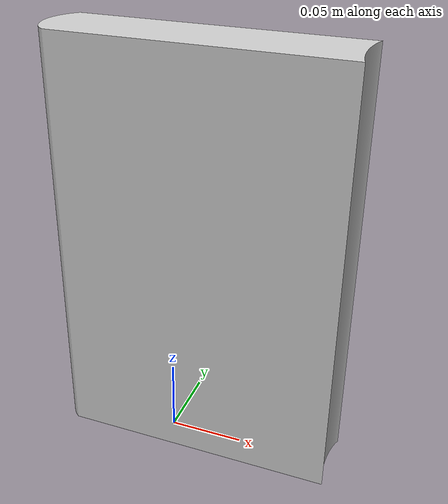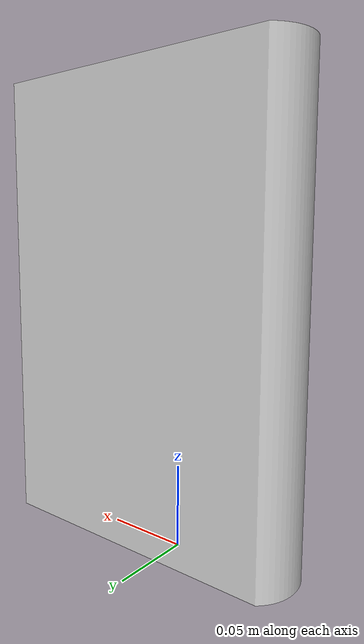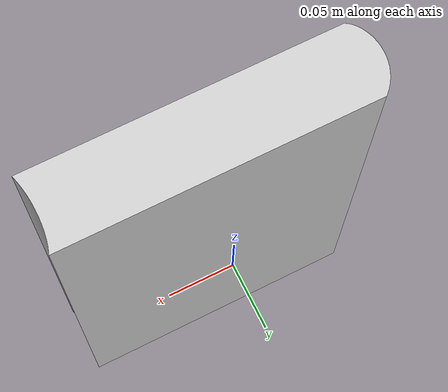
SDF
<?xml version='1.0'?>
<sdf version='1.6'>
  <model name='book1_2'>
    <link name='body'>
      <pose frame=''>0 0 0 0 -0 0</pose>
      <self_collide>0</self_collide>
      <kinematic>0</kinematic>
      <visual name='visual'>
        <geometry>
          <mesh>
            <uri>file://book1/model.dae</uri>
          </mesh>
        </geometry>
        <pose frame=''>0 0 0 0 -0 0</pose>
        <cast_shadows>1</cast_shadows>
        <transparency>0</transparency>
      </visual>
    </link>
    <link name='link_0'>
      <pose frame=''>0 0 0 0 -0 0</pose>
      <inertial>
        <mass>1</mass>
        <inertia>
          <ixx>0.166667</ixx>
          <ixy>0</ixy>
          <ixz>0</ixz>
          <iyy>0.166667</iyy>
          <iyz>0</iyz>
          <izz>0.166667</izz>
        </inertia>
      </inertial>
      <visual name='visual'>
        <pose frame=''>0 0 0 0 -0 0</pose>
        <geometry>
          <mesh>
            <uri>/home/lruegeme/projects/tobi_world/tobi_world/tobi_world_misc/gazebo/models/book1/model.dae</uri>
            <scale>1 1 1</scale>
          </mesh>
        </geometry>
        <material>
          <lighting>1</lighting>
          <script>
            <uri>file://media/materials/scripts/gazebo.material</uri>
            <name>Gazebo/Grey</name>
          </script>
          <ambient>0.3 0.3 0.3 1</ambient>
          <diffuse>0.7 0.7 0.7 1</diffuse>
          <specular>0.01 0.01 0.01 1</specular>
          <emissive>0 0 0 1</emissive>
        </material>
        <cast_shadows>1</cast_shadows>
        <transparency>0</transparency>
      </visual>
      <collision name='collision'>
        <laser_retro>0</laser_retro>
        <max_contacts>10</max_contacts>
        <pose frame=''>0 0 0 0 -0 0</pose>
        <geometry>
          <mesh>
            <uri>/home/lruegeme/projects/tobi_world/tobi_world/tobi_world_misc/gazebo/models/book1/model.dae</uri>
          </mesh>
        </geometry>
        <surface>
          <friction>
            <ode>
              <mu>1</mu>
              <mu2>1</mu2>
              <fdir1>0 0 0</fdir1>
              <slip1>0</slip1>
              <slip2>0</slip2>
            </ode>
            <torsional>
              <coefficient>1</coefficient>
              <patch_radius>0</patch_radius>
              <surface_radius>0</surface_radius>
              <use_patch_radius>1</use_patch_radius>
              <ode>
                <slip>0</slip>
              </ode>
            </torsional>
          </friction>
          <bounce>
            <restitution_coefficient>0</restitution_coefficient>
            <threshold>1e+06</threshold>
          </bounce>
          <contact>
            <collide_without_contact>0</collide_without_contact>
            <collide_without_contact_bitmask>1</collide_without_contact_bitmask>
            <collide_bitmask>1</collide_bitmask>
            <ode>
              <soft_cfm>0</soft_cfm>
              <soft_erp>0.2</soft_erp>
              <kp>1e+13</kp>
              <kd>1</kd>
              <max_vel>0.01</max_vel>
              <min_depth>0</min_depth>
            </ode>
            <bullet>
              <split_impulse>1</split_impulse>
              <split_impulse_penetration_threshold>-0.01</split_impulse_penetration_threshold>
              <soft_cfm>0</soft_cfm>
              <soft_erp>0.2</soft_erp>
              <kp>1e+13</kp>
              <kd>1</kd>
            </bullet>
          </contact>
        </surface>
      </collision>
    </link>
    <static>1</static>
    <allow_auto_disable>1</allow_auto_disable>
  </model>
</sdf>
